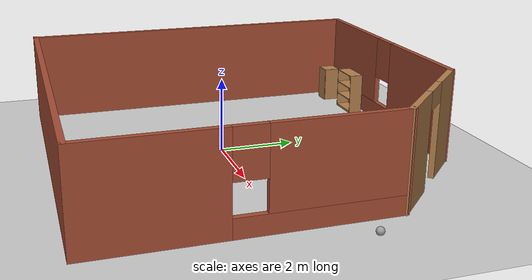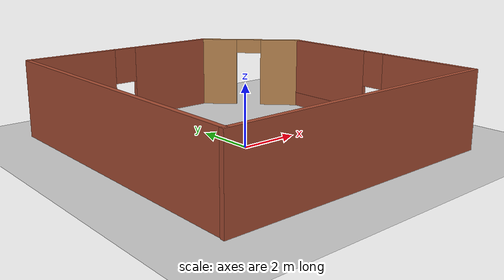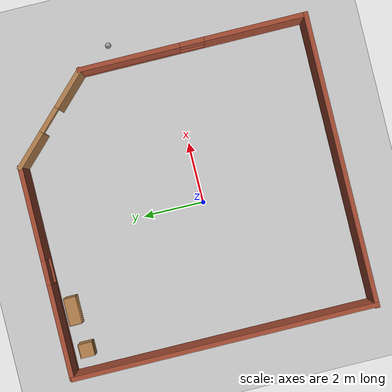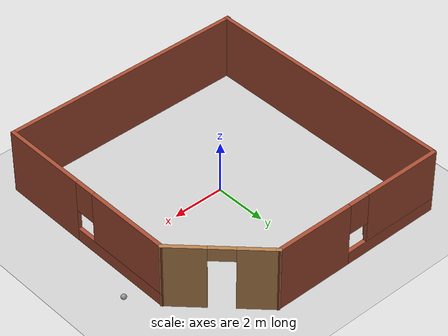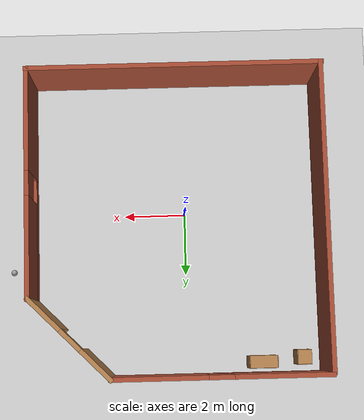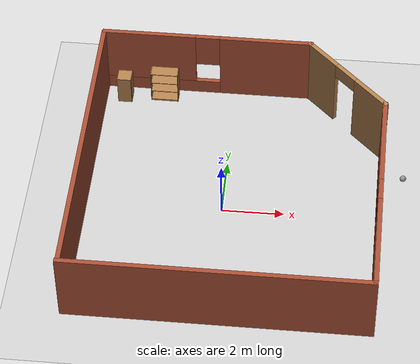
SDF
<sdf version="1.6">
 <world name="default">
  <plugin name="hello" filename="libhello.so"/>
  <light name="sun" type="directional">
   <pose>0 0 10 0 -0 0</pose>
   <diffuse>0.8 0.8 0.8 1</diffuse>
   <specular>0.2 0.2 0.2 1</specular>
   <attenuation>
    <range>1000</range>
    <constant>0.9</constant>
    <linear>0.01</linear>
    <quadratic>0.001</quadratic>
   </attenuation>
   <direction>-0.5 0.1 -0.9</direction>
  </light>
  <model name="ground_plane">
   <static>1</static>
   <link name="link">
    <collision name="collision">
     <geometry><plane><normal>0 0 1</normal><size>100 100</size></plane></geometry>
     <surface><friction><ode><mu>100</mu><mu2>50</mu2></ode></friction></surface>
    </collision>
    <visual name="visual">
     <cast_shadows>0</cast_shadows>
     <geometry><plane><normal>0 0 1</normal><size>100 100</size></plane></geometry>
     <material>
      <script><uri>file://media/materials/scripts/gazebo.material</uri><name>Gazebo/Grey</name></script>
     </material>
    </visual>
   </link>
  </model>
  <gravity>0 0 -9.8</gravity>
  <magnetic_field>6e-06 2.3e-05 -4.2e-05</magnetic_field>
  <atmosphere type="adiabatic"/>
  <physics name="default_physics" default="0" type="ode">
   <max_step_size>0.001</max_step_size>
   <real_time_factor>1</real_time_factor>
   <real_time_update_rate>1000</real_time_update_rate>
  </physics>
  <scene><ambient>0.4 0.4 0.4 1</ambient><background>0.7 0.7 0.7 1</background><shadows>1</shadows></scene>
  <spherical_coordinates>
   <surface_model>EARTH_WGS84</surface_model>
   <latitude_deg>0</latitude_deg>
   <longitude_deg>0</longitude_deg>
   <elevation>0</elevation>
   <heading_deg>0</heading_deg>
  </spherical_coordinates>
  <model name="openbuilding">
   <pose>0.28181 0.418807 0 0 -0 0</pose>
   <link name="Wall_1">
    <collision name="Wall_1_Collision">
     <geometry><box><size>10 0.15 2.5</size></box></geometry>
     <pose>0 0 1.25 0 -0 0</pose>
    </collision>
    <visual name="Wall_1_Visual">
     <pose>0 0 1.25 0 -0 0</pose>
     <geometry><box><size>10 0.15 2.5</size></box></geometry>
     <material>
      <script><uri>file://media/materials/scripts/gazebo.material</uri><name>Gazebo/Bricks</name></script>
      <ambient>1 1 1 1</ambient>
     </material>
     <meta><layer>0</layer></meta>
    </visual>
    <pose>-4.71443 -0.038325 0 0 0 -1.5708</pose>
   </link>
   <link name="Wall_2">
    <collision name="Wall_2_Collision">
     <geometry><box><size>9.601 0.15 2.5</size></box></geometry>
     <pose>0 0 1.25 0 -0 0</pose>
    </collision>
    <visual name="Wall_2_Visual">
     <pose>0 0 1.25 0 -0 0</pose>
     <geometry><box><size>9.601 0.15 2.5</size></box></geometry>
     <material>
      <script><uri>file://media/materials/scripts/gazebo.material</uri><name>Gazebo/Bricks</name></script>
      <ambient>1 1 1 1</ambient>
     </material>
     <meta><layer>0</layer></meta>
    </visual>
    <pose>-0.015533 -4.96333 0 0 -0 0</pose>
   </link>
   <link name="Wall_3">
    <pose>4.70997 -1.28832 0 0 -0 1.5708</pose>
    <visual name="Wall_3_Visual_0">
     <pose>-2.06226 0 1.25 0 -0 0</pose>
     <geometry><box><size>3.37549 0.15 2.5</size></box></geometry>
     <material>
      <script><uri>file://media/materials/scripts/gazebo.material</uri><name>Gazebo/Bricks</name></script>
      <ambient>0.921569 0.807843 0.615686 1</ambient>
     </material>
     <meta><layer>0</layer></meta>
    </visual>
    <collision name="Wall_3_Collision_0">
     <geometry><box><size>3.37549 0.15 2.5</size></box></geometry>
     <pose>-2.06226 0 1.25 0 -0 0</pose>
    </collision>
    <visual name="Wall_3_Visual_1">
     <pose>1.68774 0 0.25 0 -0 0</pose>
     <geometry><box><size>4.12451 0.15 0.5</size></box></geometry>
     <material>
      <script><uri>file://media/materials/scripts/gazebo.material</uri><name>Gazebo/Bricks</name></script>
      <ambient>0.921569 0.807843 0.615686 1</ambient>
     </material>
     <meta><layer>0</layer></meta>
    </visual>
    <collision name="Wall_3_Collision_1">
     <geometry><box><size>4.12451 0.15 0.5</size></box></geometry>
     <pose>1.68774 0 0.25 0 -0 0</pose>
    </collision>
    <visual name="Wall_3_Visual_2">
     <pose>2.08774 0 1.5 0 -0 0</pose>
     <geometry><box><size>3.32451 0.15 2</size></box></geometry>
     <material>
      <script><uri>file://media/materials/scripts/gazebo.material</uri><name>Gazebo/Bricks</name></script>
      <ambient>0.921569 0.807843 0.615686 1</ambient>
     </material>
     <meta><layer>0</layer></meta>
    </visual>
    <collision name="Wall_3_Collision_2">
     <geometry><box><size>3.32451 0.15 2</size></box></geometry>
     <pose>2.08774 0 1.5 0 -0 0</pose>
    </collision>
    <visual name="Wall_3_Visual_3">
     <pose>0.025486 0 1.9 0 -0 0</pose>
     <geometry><box><size>0.8 0.15 1.2</size></box></geometry>
     <material>
      <script><uri>file://media/materials/scripts/gazebo.material</uri><name>Gazebo/Bricks</name></script>
      <ambient>0.921569 0.807843 0.615686 1</ambient>
     </material>
     <meta><layer>0</layer></meta>
    </visual>
    <collision name="Wall_3_Collision_3">
     <geometry><box><size>0.8 0.15 1.2</size></box></geometry>
     <pose>0.025486 0 1.9 0 -0 0</pose>
    </collision>
   </link>
   <link name="Wall_4">
    <pose>3.43717 3.65947 0 0 -0 2.35619</pose>
    <visual name="Wall_4_Visual_0">
     <pose>-1.1382 0 1.25 0 -0 0</pose>
     <geometry><box><size>1.47361 0.15 2.5</size></box></geometry>
     <material>
      <script><uri>file://media/materials/scripts/gazebo.material</uri><name>Gazebo/Wood</name></script>
      <ambient>1 1 1 1</ambient>
     </material>
     <meta><layer>0</layer></meta>
    </visual>
    <collision name="Wall_4_Collision_0">
     <geometry><box><size>1.47361 0.15 2.5</size></box></geometry>
     <pose>-1.1382 0 1.25 0 -0 0</pose>
    </collision>
    <visual name="Wall_4_Visual_1">
     <pose>1.1868 0 1.25 0 -0 0</pose>
     <geometry><box><size>1.37639 0.15 2.5</size></box></geometry>
     <material>
      <script><uri>file://media/materials/scripts/gazebo.material</uri><name>Gazebo/Wood</name></script>
      <ambient>1 1 1 1</ambient>
     </material>
     <meta><layer>0</layer></meta>
    </visual>
    <collision name="Wall_4_Collision_1">
     <geometry><box><size>1.37639 0.15 2.5</size></box></geometry>
     <pose>1.1868 0 1.25 0 -0 0</pose>
    </collision>
    <visual name="Wall_4_Visual_2">
     <pose>0.048608 0 2.25 0 -0 0</pose>
     <geometry><box><size>0.9 0.15 0.5</size></box></geometry>
     <material>
      <script><uri>file://media/materials/scripts/gazebo.material</uri><name>Gazebo/Wood</name></script>
      <ambient>1 1 1 1</ambient>
     </material>
     <meta><layer>0</layer></meta>
    </visual>
    <collision name="Wall_4_Collision_2">
     <geometry><box><size>0.9 0.15 0.5</size></box></geometry>
     <pose>0.048608 0 2.25 0 -0 0</pose>
    </collision>
   </link>
   <link name="Wall_5">
    <pose>-1.26062 4.93226 0 0 -0 3.14159</pose>
    <visual name="Wall_5_Visual_0">
     <pose>-1.95211 0 1.25 0 -0 0</pose>
     <geometry><box><size>3.09579 0.15 2.5</size></box></geometry>
     <material>
      <script><uri>file://media/materials/scripts/gazebo.material</uri><name>Gazebo/Bricks</name></script>
      <ambient>0.921569 0.807843 0.615686 1</ambient>
     </material>
     <meta><layer>0</layer></meta>
    </visual>
    <collision name="Wall_5_Collision_0">
     <geometry><box><size>3.09579 0.15 2.5</size></box></geometry>
     <pose>-1.95211 0 1.25 0 -0 0</pose>
    </collision>
    <visual name="Wall_5_Visual_1">
     <pose>1.54789 0 0.25 0 -0 0</pose>
     <geometry><box><size>3.90421 0.15 0.5</size></box></geometry>
     <material>
      <script><uri>file://media/materials/scripts/gazebo.material</uri><name>Gazebo/Bricks</name></script>
      <ambient>0.921569 0.807843 0.615686 1</ambient>
     </material>
     <meta><layer>0</layer></meta>
    </visual>
    <collision name="Wall_5_Collision_1">
     <geometry><box><size>3.90421 0.15 0.5</size></box></geometry>
     <pose>1.54789 0 0.25 0 -0 0</pose>
    </collision>
    <visual name="Wall_5_Visual_2">
     <pose>1.94789 0 1.5 0 -0 0</pose>
     <geometry><box><size>3.10421 0.15 2</size></box></geometry>
     <material>
      <script><uri>file://media/materials/scripts/gazebo.material</uri><name>Gazebo/Bricks</name></script>
      <ambient>0.921569 0.807843 0.615686 1</ambient>
     </material>
     <meta><layer>0</layer></meta>
    </visual>
    <collision name="Wall_5_Collision_2">
     <geometry><box><size>3.10421 0.15 2</size></box></geometry>
     <pose>1.94789 0 1.5 0 -0 0</pose>
    </collision>
    <visual name="Wall_5_Visual_3">
     <pose>-0.004213 0 1.9 0 -0 0</pose>
     <geometry><box><size>0.8 0.15 1.2</size></box></geometry>
     <material>
      <script><uri>file://media/materials/scripts/gazebo.material</uri><name>Gazebo/Bricks</name></script>
      <ambient>0.921569 0.807843 0.615686 1</ambient>
     </material>
     <meta><layer>0</layer></meta>
    </visual>
    <collision name="Wall_5_Collision_3">
     <geometry><box><size>0.8 0.15 1.2</size></box></geometry>
     <pose>-0.004213 0 1.9 0 -0 0</pose>
    </collision>
   </link>
   <static>1</static>
  </model>
  <model name="cabinet">
   <static>1</static>
   <link name="cabinet_bottom_plate">
    <inertial>
     <pose>0 0 -1 0 -0 0</pose>
     <inertia><ixx>2.05</ixx><ixy>0</ixy><ixz>0</ixz><iyy>2.05</iyy><iyz>0</iyz><izz>2.05</izz></inertia>
     <mass>25</mass>
    </inertial>
    <collision name="cabinet_bottom_plate_geom">
     <pose>0 0 0.01 0 -0 0</pose>
     <geometry><box><size>0.45 0.45 0.02</size></box></geometry>
    </collision>
    <visual name="cabinet_bottom_plate_geom_visual">
     <pose>0 0 0.01 0 -0 0</pose>
     <geometry><box><size>0.45 0.45 0.02</size></box></geometry>
     <material>
      <script><uri>file://media/materials/scripts/gazebo.material</uri><name>Gazebo/Wood</name></script>
     </material>
    </visual>
    <collision name="cabinet_bottom_plate_geom_cabinet_back_plate">
     <pose>0.235 0 0.51 0 -0 0</pose>
     <geometry><box><size>0.02 0.45 1.02</size></box></geometry>
    </collision>
    <visual name="cabinet_bottom_plate_geom_cabinet_back_plate_visual">
     <pose>0.235 0 0.51 0 -0 0</pose>
     <geometry><box><size>0.02 0.45 1.02</size></box></geometry>
     <material>
      <script><uri>file://media/materials/scripts/gazebo.material</uri><name>Gazebo/Wood</name></script>
     </material>
    </visual>
    <collision name="cabinet_bottom_plate_geom_cabinet_left_plate">
     <pose>0 0.235 0.51 0 -0 0</pose>
     <geometry><box><size>0.45 0.02 1.02</size></box></geometry>
    </collision>
    <visual name="cabinet_bottom_plate_geom_cabinet_left_plate_visual">
     <pose>0 0.235 0.51 0 -0 0</pose>
     <geometry><box><size>0.45 0.02 1.02</size></box></geometry>
     <material>
      <script><uri>file://media/materials/scripts/gazebo.material</uri><name>Gazebo/Wood</name></script>
     </material>
    </visual>
    <collision name="cabinet_bottom_plate_geom_cabinet_middle_plate">
     <pose>0 0 0.51 0 -0 0</pose>
     <geometry><box><size>0.45 0.45 0.02</size></box></geometry>
    </collision>
    <visual name="cabinet_bottom_plate_geom_cabinet_middle_plate_visual">
     <pose>0 0 0.51 0 -0 0</pose>
     <geometry><box><size>0.45 0.45 0.02</size></box></geometry>
     <material>
      <script><uri>file://media/materials/scripts/gazebo.material</uri><name>Gazebo/Wood</name></script>
     </material>
    </visual>
    <collision name="cabinet_bottom_plate_geom_cabinet_right_plate">
     <pose>0 -0.235 0.51 0 -0 0</pose>
     <geometry><box><size>0.45 0.02 1.02</size></box></geometry>
    </collision>
    <visual name="cabinet_bottom_plate_geom_cabinet_right_plate_visual">
     <pose>0 -0.235 0.51 0 -0 0</pose>
     <geometry><box><size>0.45 0.02 1.02</size></box></geometry>
     <material>
      <script><uri>file://media/materials/scripts/gazebo.material</uri><name>Gazebo/Wood</name></script>
     </material>
    </visual>
    <collision name="cabinet_bottom_plate_geom_cabinet_top_plate">
     <pose>0 0 1.01 0 -0 0</pose>
     <geometry><box><size>0.45 0.45 0.02</size></box></geometry>
    </collision>
    <visual name="cabinet_bottom_plate_geom_cabinet_top_plate_visual">
     <pose>0 0 1.01 0 -0 0</pose>
     <geometry><box><size>0.45 0.45 0.02</size></box></geometry>
     <material>
      <script><uri>file://media/materials/scripts/gazebo.material</uri><name>Gazebo/Wood</name></script>
     </material>
    </visual>
   </link>
   <pose>-3.74217 4.81092 0 0 -0 0</pose>
  </model>
  <model name="bookshelf">
   <static>1</static>
   <link name="link">
    <inertial><mass>1</mass></inertial>
    <collision name="back">
     <pose>0 0.005 0.6 0 -0 0</pose>
     <geometry><box><size>0.9 0.01 1.2</size></box></geometry>
    </collision>
    <visual name="visual1">
     <pose>0 0.005 0.6 0 -0 0</pose>
     <geometry><box><size>0.9 0.01 1.2</size></box></geometry>
     <material>
      <script><uri>file://media/materials/scripts/gazebo.material</uri><name>Gazebo/Wood</name></script>
     </material>
    </visual>
    <collision name="left_side">
     <pose>0.45 -0.195 0.6 0 -0 0</pose>
     <geometry><box><size>0.02 0.4 1.2</size></box></geometry>
    </collision>
    <visual name="visual2">
     <pose>0.45 -0.195 0.6 0 -0 0</pose>
     <geometry><box><size>0.02 0.4 1.2</size></box></geometry>
     <material>
      <script><uri>file://media/materials/scripts/gazebo.material</uri><name>Gazebo/Wood</name></script>
     </material>
    </visual>
    <collision name="right_side">
     <pose>-0.45 -0.195 0.6 0 -0 0</pose>
     <geometry><box><size>0.02 0.4 1.2</size></box></geometry>
    </collision>
    <visual name="visual3">
     <pose>-0.45 -0.195 0.6 0 -0 0</pose>
     <geometry><box><size>0.02 0.4 1.2</size></box></geometry>
     <material>
      <script><uri>file://media/materials/scripts/gazebo.material</uri><name>Gazebo/Wood</name></script>
     </material>
    </visual>
    <collision name="bottom">
     <pose>0 -0.195 0.03 0 -0 0</pose>
     <geometry><box><size>0.88 0.4 0.06</size></box></geometry>
    </collision>
    <visual name="visual4">
     <pose>0 -0.195 0.03 0 -0 0</pose>
     <geometry><box><size>0.88 0.4 0.06</size></box></geometry>
     <material>
      <script><uri>file://media/materials/scripts/gazebo.material</uri><name>Gazebo/Wood</name></script>
     </material>
    </visual>
    <collision name="top">
     <pose>0 -0.195 1.19 0 -0 0</pose>
     <geometry><box><size>0.88 0.4 0.02</size></box></geometry>
    </collision>
    <visual name="visual5">
     <pose>0 -0.195 1.19 0 -0 0</pose>
     <geometry><box><size>0.88 0.4 0.02</size></box></geometry>
     <material>
      <script><uri>file://media/materials/scripts/gazebo.material</uri><name>Gazebo/Wood</name></script>
     </material>
    </visual>
    <collision name="low_shelf">
     <pose>0 -0.195 0.43 0 -0 0</pose>
     <geometry><box><size>0.88 0.4 0.02</size></box></geometry>
    </collision>
    <visual name="visual6">
     <pose>0 -0.195 0.43 0 -0 0</pose>
     <geometry><box><size>0.88 0.4 0.02</size></box></geometry>
     <material>
      <script><uri>file://media/materials/scripts/gazebo.material</uri><name>Gazebo/Wood</name></script>
     </material>
    </visual>
    <collision name="high_shelf">
     <pose>0 -0.195 0.8 0 -0 0</pose>
     <geometry><box><size>0.88 0.4 0.02</size></box></geometry>
    </collision>
    <visual name="visual7">
     <pose>0 -0.195 0.8 0 -0 0</pose>
     <geometry><box><size>0.88 0.4 0.02</size></box></geometry>
     <material>
      <script><uri>file://media/materials/scripts/gazebo.material</uri><name>Gazebo/Wood</name></script>
     </material>
    </visual>
   </link>
   <pose>-2.4015 5.12745 0 0 -0 0</pose>
  </model>
  <model name="my_ball">
   <link name="link_0">
    <inertial>
     <mass>1</mass>
     <inertia><ixx>0.1</ixx><ixy>0</ixy><ixz>0</ixz><iyy>0.1</iyy><iyz>0</iyz><izz>0.1</izz></inertia>
    </inertial>
    <visual name="visual">
     <geometry><sphere><radius>0.1</radius></sphere></geometry>
     <material>
      <lighting>1</lighting>
      <script><uri>file://media/materials/scripts/gazebo.material</uri><name>Gazebo/Grey</name></script>
      <shader type="pixel"><normal_map>__default__</normal_map></shader>
      <ambient>1 1 1 1</ambient>
      <diffuse>1 1 1 1</diffuse>
      <specular>1 1 1 1</specular>
      <emissive>1 1 1 1</emissive>
     </material>
    </visual>
    <collision name="collision">
     <geometry><sphere><radius>0.1</radius></sphere></geometry>
     <surface>
      <friction>
       <ode><mu>1</mu><mu2>1</mu2><fdir1>0 0 0</fdir1><slip1>0</slip1><slip2>0</slip2></ode>
       <torsional>
        <coefficient>1</coefficient>
        <patch_radius>0</patch_radius>
        <surface_radius>0</surface_radius>
        <use_patch_radius>1</use_patch_radius>
        <ode><slip>0</slip></ode>
       </torsional>
      </friction>
      <bounce><restitution_coefficient>0</restitution_coefficient><threshold>1e+06</threshold></bounce>
      <contact>
       <collide_without_contact>0</collide_without_contact>
       <collide_without_contact_bitmask>1</collide_without_contact_bitmask>
       <collide_bitmask>1</collide_bitmask>
       <ode>
        <soft_cfm>0</soft_cfm>
        <soft_erp>0.2</soft_erp>
        <kp>1e+13</kp>
        <kd>1</kd>
        <max_vel>0.01</max_vel>
        <min_depth>0</min_depth>
       </ode>
       <bullet>
        <split_impulse>1</split_impulse>
        <split_impulse_penetration_threshold>-0.01</split_impulse_penetration_threshold>
        <soft_cfm>0</soft_cfm>
        <soft_erp>0.2</soft_erp>
        <kp>1e+13</kp>
        <kd>1</kd>
       </bullet>
      </contact>
     </surface>
    </collision>
   </link>
   <static>0</static>
   <pose>5.73954 1.80207 0.1 0 -0 0</pose>
  </model>
  <plugin filename="libcollision_map_creator.so" name="collision_map_creator"/>
 </world>
</sdf>
